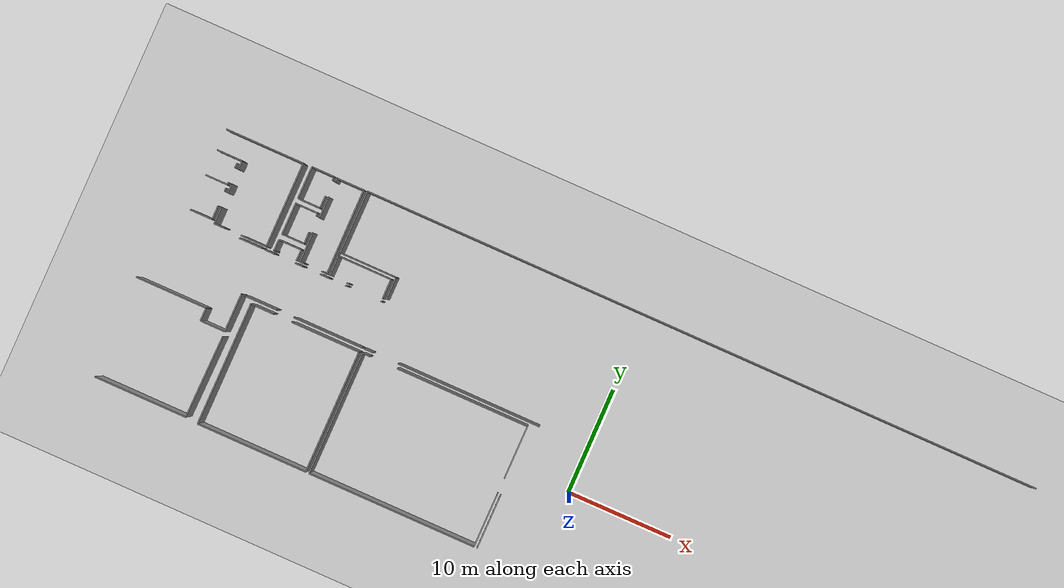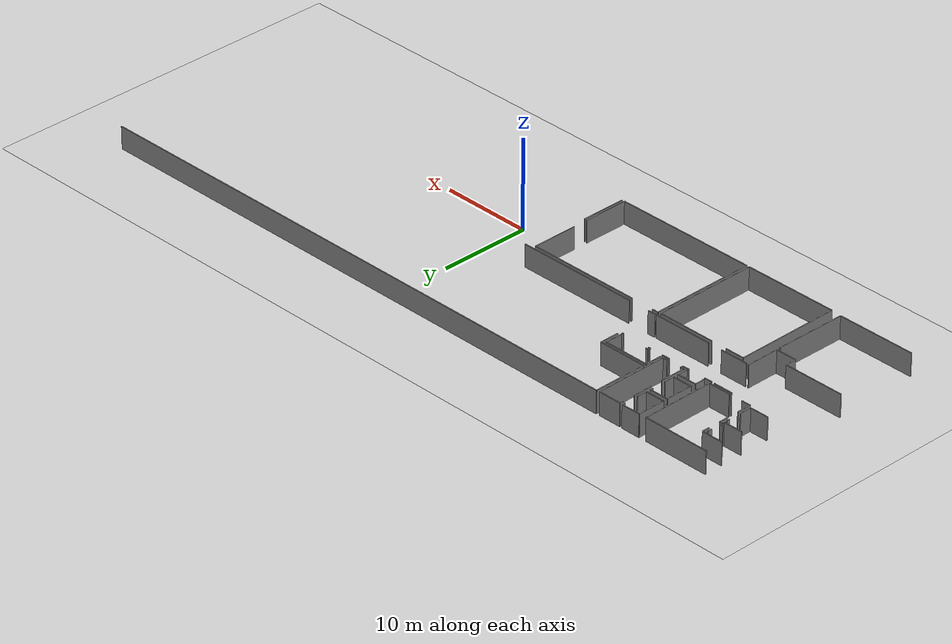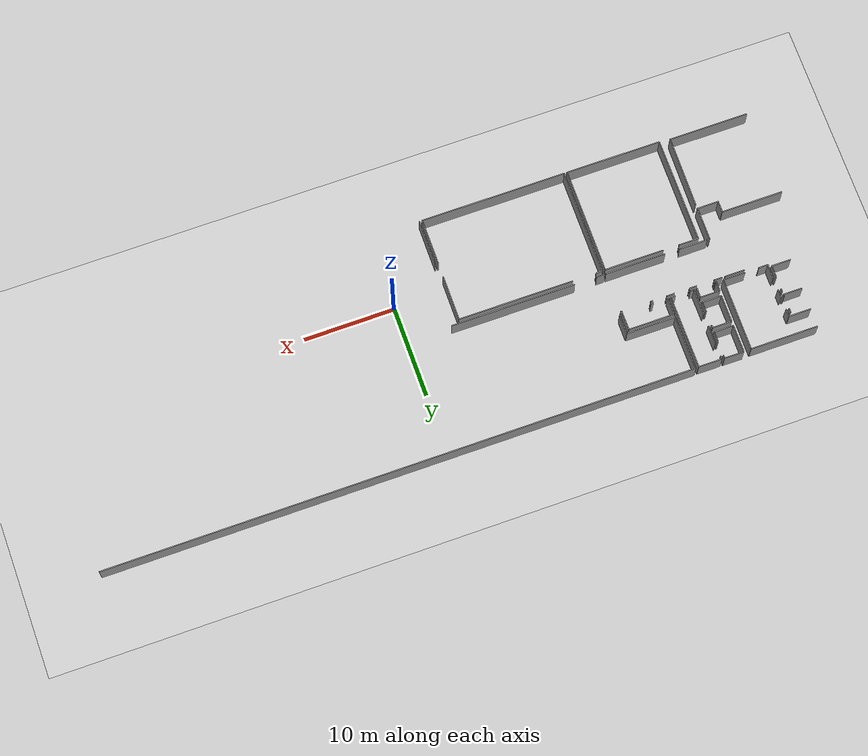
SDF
<sdf version="1.6">
 <world name="default">
  <model name="ground_plane">
   <static>1</static>
   <link name="link">
    <collision name="collision">
     <geometry><plane><normal>0 0 1</normal><size>100 100</size></plane></geometry>
     <surface><friction><ode><mu>100</mu><mu2>50</mu2></ode></friction></surface>
    </collision>
    <visual name="visual">
     <cast_shadows>0</cast_shadows>
     <geometry><plane><normal>0 0 1</normal><size>100 100</size></plane></geometry>
     <material>
      <script><uri>file://media/materials/scripts/gazebo.material</uri><name>Gazebo/Grey</name></script>
     </material>
    </visual>
   </link>
  </model>
  <model name="50037764_PLAN1">
   <static>1</static>
   <link name="Wall_164">
    <collision name="Wall_164_Collision">
     <geometry><box><size>2.33540088464 0.1 2.5</size></box></geometry>
     <pose>1.16770044232 0 1.25 0 0 0</pose>
    </collision>
    <visual name="Wall_164_Visual">
     <pose>1.16770044232 0 1.25 0 0 0</pose>
     <geometry><box><size>2.33540088464 0.1 2.5</size></box></geometry>
     <material>
      <script><uri>file://media/materials/scripts/gazebo.material</uri><name>Gazebo/Grey</name></script>
      <ambient>1 1 1 1</ambient>
     </material>
    </visual>
    <pose>101.567695358 -20.0214805023 0 0 0 3.14159265359</pose>
   </link>
   <link name="Wall_165">
    <collision name="Wall_165_Collision">
     <geometry><box><size>1.21968579999 0.1 2.5</size></box></geometry>
     <pose>0.609842899995 0 1.25 0 0 0</pose>
    </collision>
    <visual name="Wall_165_Visual">
     <pose>0.609842899995 0 1.25 0 0 0</pose>
     <geometry><box><size>1.21968579999 0.1 2.5</size></box></geometry>
     <material>
      <script><uri>file://media/materials/scripts/gazebo.material</uri><name>Gazebo/Grey</name></script>
      <ambient>1 1 1 1</ambient>
     </material>
    </visual>
    <pose>99.2322944735 -20.0214805023 0 0 0 1.57079632679</pose>
   </link>
   <link name="Wall_166">
    <collision name="Wall_166_Collision">
     <geometry><box><size>6.74716559052 0.1 2.5</size></box></geometry>
     <pose>3.37358279526 0 1.25 0 0 0</pose>
    </collision>
    <visual name="Wall_166_Visual">
     <pose>3.37358279526 0 1.25 0 0 0</pose>
     <geometry><box><size>6.74716559052 0.1 2.5</size></box></geometry>
     <material>
      <script><uri>file://media/materials/scripts/gazebo.material</uri><name>Gazebo/Grey</name></script>
      <ambient>1 1 1 1</ambient>
     </material>
    </visual>
    <pose>99.2322944735 -18.8017947023 0 0 0 3.14159265359</pose>
   </link>
   <link name="Wall_176">
    <collision name="Wall_176_Collision">
     <geometry><box><size>2.16991204433 0.1 2.5</size></box></geometry>
     <pose>1.08495602217 0 1.25 0 0 0</pose>
    </collision>
    <visual name="Wall_176_Visual">
     <pose>1.08495602217 0 1.25 0 0 0</pose>
     <geometry><box><size>2.16991204433 0.1 2.5</size></box></geometry>
     <material>
      <script><uri>file://media/materials/scripts/gazebo.material</uri><name>Gazebo/Grey</name></script>
      <ambient>1 1 1 1</ambient>
     </material>
    </visual>
    <pose>99.4064263562 -11.9763333164 0 0 0 0.0</pose>
   </link>
   <link name="Wall_177">
    <collision name="Wall_177_Collision">
     <geometry><box><size>3.63229967245 0.1 2.5</size></box></geometry>
     <pose>1.81614983623 0 1.25 0 0 0</pose>
    </collision>
    <visual name="Wall_177_Visual">
     <pose>1.81614983623 0 1.25 0 0 0</pose>
     <geometry><box><size>3.63229967245 0.1 2.5</size></box></geometry>
     <material>
      <script><uri>file://media/materials/scripts/gazebo.material</uri><name>Gazebo/Grey</name></script>
      <ambient>1 1 1 1</ambient>
     </material>
    </visual>
    <pose>101.576338401 -16.3891911129 0 0 0 -1.57317582499</pose>
   </link>
   <link name="Wall_187">
    <collision name="Wall_187_Collision">
     <geometry><box><size>2.43606690732 0.1 2.5</size></box></geometry>
     <pose>1.21803345366 0 1.25 0 0 0</pose>
    </collision>
    <visual name="Wall_187_Visual">
     <pose>1.21803345366 0 1.25 0 0 0</pose>
     <geometry><box><size>2.43606690732 0.1 2.5</size></box></geometry>
     <material>
      <script><uri>file://media/materials/scripts/gazebo.material</uri><name>Gazebo/Grey</name></script>
      <ambient>1 1 1 1</ambient>
     </material>
    </visual>
    <pose>101.869947633 -11.7022217703 0 0 0 3.14159265359</pose>
   </link>
   <link name="Wall_188">
    <collision name="Wall_188_Collision">
     <geometry><box><size>1.01098174793 0.1 2.5</size></box></geometry>
     <pose>0.505490873964 0 1.25 0 0 0</pose>
    </collision>
    <visual name="Wall_188_Visual">
     <pose>0.505490873964 0 1.25 0 0 0</pose>
     <geometry><box><size>1.01098174793 0.1 2.5</size></box></geometry>
     <material>
      <script><uri>file://media/materials/scripts/gazebo.material</uri><name>Gazebo/Grey</name></script>
      <ambient>1 1 1 1</ambient>
     </material>
    </visual>
    <pose>97.8771162743 -11.7022217703 0 0 0 3.14159265359</pose>
   </link>
   <link name="Wall_189">
    <collision name="Wall_189_Collision">
     <geometry><box><size>1.57682139407 0.1 2.5</size></box></geometry>
     <pose>0.788410697036 0 1.25 0 0 0</pose>
    </collision>
    <visual name="Wall_189_Visual">
     <pose>0.788410697036 0 1.25 0 0 0</pose>
     <geometry><box><size>1.57682139407 0.1 2.5</size></box></geometry>
     <material>
      <script><uri>file://media/materials/scripts/gazebo.material</uri><name>Gazebo/Grey</name></script>
      <ambient>1 1 1 1</ambient>
     </material>
    </visual>
    <pose>96.8661345264 -11.7022217703 0 0 0 1.57079632679</pose>
   </link>
   <link name="Wall_190">
    <collision name="Wall_190_Collision">
     <geometry><box><size>0.901189689359 0.1 2.5</size></box></geometry>
     <pose>0.450594844679 0 1.25 0 0 0</pose>
    </collision>
    <visual name="Wall_190_Visual">
     <pose>0.450594844679 0 1.25 0 0 0</pose>
     <geometry><box><size>0.901189689359 0.1 2.5</size></box></geometry>
     <material>
      <script><uri>file://media/materials/scripts/gazebo.material</uri><name>Gazebo/Grey</name></script>
      <ambient>1 1 1 1</ambient>
     </material>
    </visual>
    <pose>96.8661345264 -8.77306929686 0 0 0 1.57079632679</pose>
   </link>
   <link name="Wall_191">
    <collision name="Wall_191_Collision">
     <geometry><box><size>0.812318877421 0.1 2.5</size></box></geometry>
     <pose>0.406159438711 0 1.25 0 0 0</pose>
    </collision>
    <visual name="Wall_191_Visual">
     <pose>0.406159438711 0 1.25 0 0 0</pose>
     <geometry><box><size>0.812318877421 0.1 2.5</size></box></geometry>
     <material>
      <script><uri>file://media/materials/scripts/gazebo.material</uri><name>Gazebo/Grey</name></script>
      <ambient>1 1 1 1</ambient>
     </material>
    </visual>
    <pose>96.8661345264 -6.48332401241 0 0 0 1.57079632679</pose>
   </link>
   <link name="Wall_192">
    <collision name="Wall_192_Collision">
     <geometry><box><size>2.41217143729 0.1 2.5</size></box></geometry>
     <pose>1.20608571864 0 1.25 0 0 0</pose>
    </collision>
    <visual name="Wall_192_Visual">
     <pose>1.20608571864 0 1.25 0 0 0</pose>
     <geometry><box><size>2.41217143729 0.1 2.5</size></box></geometry>
     <material>
      <script><uri>file://media/materials/scripts/gazebo.material</uri><name>Gazebo/Grey</name></script>
      <ambient>1 1 1 1</ambient>
     </material>
    </visual>
    <pose>96.8661345264 -5.67100513498 0 0 0 3.14159265359</pose>
   </link>
   <link name="Wall_194">
    <collision name="Wall_194_Collision">
     <geometry><box><size>7.42539020794 0.1 2.5</size></box></geometry>
     <pose>3.71269510397 0 1.25 0 0 0</pose>
    </collision>
    <visual name="Wall_194_Visual">
     <pose>3.71269510397 0 1.25 0 0 0</pose>
     <geometry><box><size>7.42539020794 0.1 2.5</size></box></geometry>
     <material>
      <script><uri>file://media/materials/scripts/gazebo.material</uri><name>Gazebo/Grey</name></script>
      <ambient>1 1 1 1</ambient>
     </material>
    </visual>
    <pose>94.4539630891 -3.67367430983 0 0 0 0.0</pose>
   </link>
   <link name="Wall_195">
    <collision name="Wall_195_Collision">
     <geometry><box><size>8.02855296997 0.1 2.5</size></box></geometry>
     <pose>4.01427648498 0 1.25 0 0 0</pose>
    </collision>
    <visual name="Wall_195_Visual">
     <pose>4.01427648498 0 1.25 0 0 0</pose>
     <geometry><box><size>8.02855296997 0.1 2.5</size></box></geometry>
     <material>
      <script><uri>file://media/materials/scripts/gazebo.material</uri><name>Gazebo/Grey</name></script>
      <ambient>1 1 1 1</ambient>
     </material>
    </visual>
    <pose>101.879353297 -3.67367430983 0 0 0 -1.57196785371</pose>
   </link>
   <link name="Wall_196">
    <collision name="Wall_196_Collision">
     <geometry><box><size>2.13635670344 0.1 2.5</size></box></geometry>
     <pose>1.06817835172 0 1.25 0 0 0</pose>
    </collision>
    <visual name="Wall_196_Visual">
     <pose>1.06817835172 0 1.25 0 0 0</pose>
     <geometry><box><size>2.13635670344 0.1 2.5</size></box></geometry>
     <material>
      <script><uri>file://media/materials/scripts/gazebo.material</uri><name>Gazebo/Grey</name></script>
      <ambient>1 1 1 1</ambient>
     </material>
    </visual>
    <pose>96.565407494 -8.09682749504 0 0 0 3.14159265359</pose>
   </link>
   <link name="Wall_199">
    <collision name="Wall_199_Collision">
     <geometry><box><size>0.458970969546 0.1 2.5</size></box></geometry>
     <pose>0.229485484773 0 1.25 0 0 0</pose>
    </collision>
    <visual name="Wall_199_Visual">
     <pose>0.229485484773 0 1.25 0 0 0</pose>
     <geometry><box><size>0.458970969546 0.1 2.5</size></box></geometry>
     <material>
      <script><uri>file://media/materials/scripts/gazebo.material</uri><name>Gazebo/Grey</name></script>
      <ambient>1 1 1 1</ambient>
     </material>
    </visual>
    <pose>96.5382073313 -6.03144542173 0 0 0 -1.57079632679</pose>
   </link>
   <link name="Wall_200">
    <collision name="Wall_200_Collision">
     <geometry><box><size>0.226132152177 0.1 2.5</size></box></geometry>
     <pose>0.113066076089 0 1.25 0 0 0</pose>
    </collision>
    <visual name="Wall_200_Visual">
     <pose>0.113066076089 0 1.25 0 0 0</pose>
     <geometry><box><size>0.226132152177 0.1 2.5</size></box></geometry>
     <material>
      <script><uri>file://media/materials/scripts/gazebo.material</uri><name>Gazebo/Grey</name></script>
      <ambient>1 1 1 1</ambient>
     </material>
    </visual>
    <pose>96.5382073313 -7.87233718033 0 0 0 -1.45022000302</pose>
   </link>
   <link name="Wall_201">
    <collision name="Wall_201_Collision">
     <geometry><box><size>2.11068178352 0.1 2.5</size></box></geometry>
     <pose>1.05534089176 0 1.25 0 0 0</pose>
    </collision>
    <visual name="Wall_201_Visual">
     <pose>1.05534089176 0 1.25 0 0 0</pose>
     <geometry><box><size>2.11068178352 0.1 2.5</size></box></geometry>
     <material>
      <script><uri>file://media/materials/scripts/gazebo.material</uri><name>Gazebo/Grey</name></script>
      <ambient>1 1 1 1</ambient>
     </material>
    </visual>
    <pose>96.5437998881 -11.4373633637 0 0 0 3.14159265359</pose>
   </link>
   <link name="Wall_204">
    <collision name="Wall_204_Collision">
     <geometry><box><size>0.332401240531 0.1 2.5</size></box></geometry>
     <pose>0.166200620265 0 1.25 0 0 0</pose>
    </collision>
    <visual name="Wall_204_Visual">
     <pose>0.166200620265 0 1.25 0 0 0</pose>
     <geometry><box><size>0.332401240531 0.1 2.5</size></box></geometry>
     <material>
      <script><uri>file://media/materials/scripts/gazebo.material</uri><name>Gazebo/Grey</name></script>
      <ambient>1 1 1 1</ambient>
     </material>
    </visual>
    <pose>96.5437998881 -8.42081447964 0 0 0 -1.57079632679</pose>
   </link>
   <link name="Wall_205">
    <collision name="Wall_205_Collision">
     <geometry><box><size>1.31297981595 0.1 2.5</size></box></geometry>
     <pose>0.656489907977 0 1.25 0 0 0</pose>
    </collision>
    <visual name="Wall_205_Visual">
     <pose>0.656489907977 0 1.25 0 0 0</pose>
     <geometry><box><size>1.31297981595 0.1 2.5</size></box></geometry>
     <material>
      <script><uri>file://media/materials/scripts/gazebo.material</uri><name>Gazebo/Grey</name></script>
      <ambient>1 1 1 1</ambient>
     </material>
    </visual>
    <pose>96.5437998881 -10.1243835477 0 0 0 -1.57079632679</pose>
   </link>
   <link name="Wall_216">
    <collision name="Wall_216_Collision">
     <geometry><box><size>8.74853830901 0.1 2.5</size></box></geometry>
     <pose>4.37426915451 0 1.25 0 0 0</pose>
    </collision>
    <visual name="Wall_216_Visual">
     <pose>4.37426915451 0 1.25 0 0 0</pose>
     <geometry><box><size>8.74853830901 0.1 2.5</size></box></geometry>
     <material>
      <script><uri>file://media/materials/scripts/gazebo.material</uri><name>Gazebo/Grey</name></script>
      <ambient>1 1 1 1</ambient>
     </material>
    </visual>
    <pose>101.491687427 -28.312445981 0 0 0 3.14159265359</pose>
   </link>
   <link name="Wall_224">
    <collision name="Wall_224_Collision">
     <geometry><box><size>7.83434694967 0.1 2.5</size></box></geometry>
     <pose>3.91717347484 0 1.25 0 0 0</pose>
    </collision>
    <visual name="Wall_224_Visual">
     <pose>3.91717347484 0 1.25 0 0 0</pose>
     <geometry><box><size>7.83434694967 0.1 2.5</size></box></geometry>
     <material>
      <script><uri>file://media/materials/scripts/gazebo.material</uri><name>Gazebo/Grey</name></script>
      <ambient>1 1 1 1</ambient>
     </material>
    </visual>
    <pose>101.596420764 -20.4787991255 0 0 0 -1.58416520837</pose>
   </link>
   <link name="Wall_234">
    <collision name="Wall_234_Collision">
     <geometry><box><size>6.60989374142 0.1 2.5</size></box></geometry>
     <pose>3.30494687071 0 1.25 0 0 0</pose>
    </collision>
    <visual name="Wall_234_Visual">
     <pose>3.30494687071 0 1.25 0 0 0</pose>
     <geometry><box><size>6.60989374142 0.1 2.5</size></box></geometry>
     <material>
      <script><uri>file://media/materials/scripts/gazebo.material</uri><name>Gazebo/Grey</name></script>
      <ambient>1 1 1 1</ambient>
     </material>
    </visual>
    <pose>113.207585541 -16.4190604505 0 0 0 3.14159265359</pose>
   </link>
   <link name="Wall_235">
    <collision name="Wall_235_Collision">
     <geometry><box><size>3.09573440439 0.1 2.5</size></box></geometry>
     <pose>1.5478672022 0 1.25 0 0 0</pose>
    </collision>
    <visual name="Wall_235_Visual">
     <pose>1.5478672022 0 1.25 0 0 0</pose>
     <geometry><box><size>3.09573440439 0.1 2.5</size></box></geometry>
     <material>
      <script><uri>file://media/materials/scripts/gazebo.material</uri><name>Gazebo/Grey</name></script>
      <ambient>1 1 1 1</ambient>
     </material>
    </visual>
    <pose>104.973054044 -16.4190604505 0 0 0 3.14159265359</pose>
   </link>
   <link name="Wall_236">
    <collision name="Wall_236_Collision">
     <geometry><box><size>0.897096954599 0.1 2.5</size></box></geometry>
     <pose>0.448548477299 0 1.25 0 0 0</pose>
    </collision>
    <visual name="Wall_236_Visual">
     <pose>0.448548477299 0 1.25 0 0 0</pose>
     <geometry><box><size>0.897096954599 0.1 2.5</size></box></geometry>
     <material>
      <script><uri>file://media/materials/scripts/gazebo.material</uri><name>Gazebo/Grey</name></script>
      <ambient>1 1 1 1</ambient>
     </material>
    </visual>
    <pose>101.87731964 -11.9930347247 0 0 0 0.0</pose>
   </link>
   <link name="Wall_237">
    <collision name="Wall_237_Collision">
     <geometry><box><size>0.794905689156 0.1 2.5</size></box></geometry>
     <pose>0.397452844578 0 1.25 0 0 0</pose>
    </collision>
    <visual name="Wall_237_Visual">
     <pose>0.397452844578 0 1.25 0 0 0</pose>
     <geometry><box><size>0.794905689156 0.1 2.5</size></box></geometry>
     <material>
      <script><uri>file://media/materials/scripts/gazebo.material</uri><name>Gazebo/Grey</name></script>
      <ambient>1 1 1 1</ambient>
     </material>
    </visual>
    <pose>104.753164879 -11.9930347247 0 0 0 0.0</pose>
   </link>
   <link name="Wall_238">
    <collision name="Wall_238_Collision">
     <geometry><box><size>0.884640805328 0.1 2.5</size></box></geometry>
     <pose>0.442320402664 0 1.25 0 0 0</pose>
    </collision>
    <visual name="Wall_238_Visual">
     <pose>0.442320402664 0 1.25 0 0 0</pose>
     <geometry><box><size>0.884640805328 0.1 2.5</size></box></geometry>
     <material>
      <script><uri>file://media/materials/scripts/gazebo.material</uri><name>Gazebo/Grey</name></script>
      <ambient>1 1 1 1</ambient>
     </material>
    </visual>
    <pose>107.204484214 -11.9930347247 0 0 0 0.0</pose>
   </link>
   <link name="Wall_239">
    <collision name="Wall_239_Collision">
     <geometry><box><size>0.224464893996 0.1 2.5</size></box></geometry>
     <pose>0.112232446998 0 1.25 0 0 0</pose>
    </collision>
    <visual name="Wall_239_Visual">
     <pose>0.112232446998 0 1.25 0 0 0</pose>
     <geometry><box><size>0.224464893996 0.1 2.5</size></box></geometry>
     <material>
      <script><uri>file://media/materials/scripts/gazebo.material</uri><name>Gazebo/Grey</name></script>
      <ambient>1 1 1 1</ambient>
     </material>
    </visual>
    <pose>109.640551121 -11.9930347247 0 0 0 0.0</pose>
   </link>
   <link name="Wall_240">
    <collision name="Wall_240_Collision">
     <geometry><box><size>0.194976867151 0.1 2.5</size></box></geometry>
     <pose>0.0974884335757 0 1.25 0 0 0</pose>
    </collision>
    <visual name="Wall_240_Visual">
     <pose>0.0974884335757 0 1.25 0 0 0</pose>
     <geometry><box><size>0.194976867151 0.1 2.5</size></box></geometry>
     <material>
      <script><uri>file://media/materials/scripts/gazebo.material</uri><name>Gazebo/Grey</name></script>
      <ambient>1 1 1 1</ambient>
     </material>
    </visual>
    <pose>113.012608674 -11.9930347247 0 0 0 0.0</pose>
   </link>
   <link name="Wall_241">
    <collision name="Wall_241_Collision">
     <geometry><box><size>0.121765214297 0.1 2.5</size></box></geometry>
     <pose>0.0608826071483 0 1.25 0 0 0</pose>
    </collision>
    <visual name="Wall_241_Visual">
     <pose>0.0608826071483 0 1.25 0 0 0</pose>
     <geometry><box><size>0.121765214297 0.1 2.5</size></box></geometry>
     <material>
      <script><uri>file://media/materials/scripts/gazebo.material</uri><name>Gazebo/Grey</name></script>
      <ambient>1 1 1 1</ambient>
     </material>
    </visual>
    <pose>102.763739895 -11.7585540699 0 0 0 3.14159265359</pose>
   </link>
   <link name="Wall_242">
    <collision name="Wall_242_Collision">
     <geometry><box><size>1.06441608623 0.1 2.5</size></box></geometry>
     <pose>0.532208043114 0 1.25 0 0 0</pose>
    </collision>
    <visual name="Wall_242_Visual">
     <pose>0.532208043114 0 1.25 0 0 0</pose>
     <geometry><box><size>1.06441608623 0.1 2.5</size></box></geometry>
     <material>
      <script><uri>file://media/materials/scripts/gazebo.material</uri><name>Gazebo/Grey</name></script>
      <ambient>1 1 1 1</ambient>
     </material>
    </visual>
    <pose>102.641974681 -11.7585540699 0 0 0 1.57079632679</pose>
   </link>
   <link name="Wall_243">
    <collision name="Wall_243_Collision">
     <geometry><box><size>2.18084295084 0.1 2.5</size></box></geometry>
     <pose>1.09042147542 0 1.25 0 0 0</pose>
    </collision>
    <visual name="Wall_243_Visual">
     <pose>1.09042147542 0 1.25 0 0 0</pose>
     <geometry><box><size>2.18084295084 0.1 2.5</size></box></geometry>
     <material>
      <script><uri>file://media/materials/scripts/gazebo.material</uri><name>Gazebo/Grey</name></script>
      <ambient>1 1 1 1</ambient>
     </material>
    </visual>
    <pose>102.641974681 -10.6941379836 0 0 0 0.0</pose>
   </link>
   <link name="Wall_244">
    <collision name="Wall_244_Collision">
     <geometry><box><size>1.06480362205 0.1 2.5</size></box></geometry>
     <pose>0.532401811027 0 1.25 0 0 0</pose>
    </collision>
    <visual name="Wall_244_Visual">
     <pose>0.532401811027 0 1.25 0 0 0</pose>
     <geometry><box><size>1.06480362205 0.1 2.5</size></box></geometry>
     <material>
      <script><uri>file://media/materials/scripts/gazebo.material</uri><name>Gazebo/Grey</name></script>
      <ambient>1 1 1 1</ambient>
     </material>
    </visual>
    <pose>104.822817632 -10.6941379836 0 0 0 -1.59777678615</pose>
   </link>
   <link name="Wall_245">
    <collision name="Wall_245_Collision">
     <geometry><box><size>0.517057298287 0.1 2.5</size></box></geometry>
     <pose>0.258528649143 0 1.25 0 0 0</pose>
    </collision>
    <visual name="Wall_245_Visual">
     <pose>0.258528649143 0 1.25 0 0 0</pose>
     <geometry><box><size>0.517057298287 0.1 2.5</size></box></geometry>
     <material>
      <script><uri>file://media/materials/scripts/gazebo.material</uri><name>Gazebo/Grey</name></script>
      <ambient>1 1 1 1</ambient>
     </material>
    </visual>
    <pose>107.730947176 -11.7184147643 0 0 0 3.14159265359</pose>
   </link>
   <link name="Wall_246">
    <collision name="Wall_246_Collision">
     <geometry><box><size>0.421475418171 0.1 2.5</size></box></geometry>
     <pose>0.210737709085 0 1.25 0 0 0</pose>
    </collision>
    <visual name="Wall_246_Visual">
     <pose>0.210737709085 0 1.25 0 0 0</pose>
     <geometry><box><size>0.421475418171 0.1 2.5</size></box></geometry>
     <material>
      <script><uri>file://media/materials/scripts/gazebo.material</uri><name>Gazebo/Grey</name></script>
      <ambient>1 1 1 1</ambient>
     </material>
    </visual>
    <pose>105.554425746 -11.7184147643 0 0 0 3.14159265359</pose>
   </link>
   <link name="Wall_247">
    <collision name="Wall_247_Collision">
     <geometry><box><size>2.80883623977 0.1 2.5</size></box></geometry>
     <pose>1.40441811988 0 1.25 0 0 0</pose>
    </collision>
    <visual name="Wall_247_Visual">
     <pose>1.40441811988 0 1.25 0 0 0</pose>
     <geometry><box><size>2.80883623977 0.1 2.5</size></box></geometry>
     <material>
      <script><uri>file://media/materials/scripts/gazebo.material</uri><name>Gazebo/Grey</name></script>
      <ambient>1 1 1 1</ambient>
     </material>
    </visual>
    <pose>105.132950328 -11.7184147643 0 0 0 1.57079632679</pose>
   </link>
   <link name="Wall_248">
    <collision name="Wall_248_Collision">
     <geometry><box><size>2.05251919264 0.1 2.5</size></box></geometry>
     <pose>1.02625959632 0 1.25 0 0 0</pose>
    </collision>
    <visual name="Wall_248_Visual">
     <pose>1.02625959632 0 1.25 0 0 0</pose>
     <geometry><box><size>2.05251919264 0.1 2.5</size></box></geometry>
     <material>
      <script><uri>file://media/materials/scripts/gazebo.material</uri><name>Gazebo/Grey</name></script>
      <ambient>1 1 1 1</ambient>
     </material>
    </visual>
    <pose>105.132950328 -7.51428644059 0 0 0 1.57079632679</pose>
   </link>
   <link name="Wall_249">
    <collision name="Wall_249_Collision">
     <geometry><box><size>0.353881742844 0.1 2.5</size></box></geometry>
     <pose>0.176940871422 0 1.25 0 0 0</pose>
    </collision>
    <visual name="Wall_249_Visual">
     <pose>0.176940871422 0 1.25 0 0 0</pose>
     <geometry><box><size>0.353881742844 0.1 2.5</size></box></geometry>
     <material>
      <script><uri>file://media/materials/scripts/gazebo.material</uri><name>Gazebo/Grey</name></script>
      <ambient>1 1 1 1</ambient>
     </material>
    </visual>
    <pose>105.132950328 -4.02097208806 0 0 0 1.57079632679</pose>
   </link>
   <link name="Wall_250">
    <collision name="Wall_250_Collision">
     <geometry><box><size>2.56444150694 0.1 2.5</size></box></geometry>
     <pose>1.28222075347 0 1.25 0 0 0</pose>
    </collision>
    <visual name="Wall_250_Visual">
     <pose>1.28222075347 0 1.25 0 0 0</pose>
     <geometry><box><size>2.56444150694 0.1 2.5</size></box></geometry>
     <material>
      <script><uri>file://media/materials/scripts/gazebo.material</uri><name>Gazebo/Grey</name></script>
      <ambient>1 1 1 1</ambient>
     </material>
    </visual>
    <pose>105.132950328 -3.66709034521 0 0 0 0.0</pose>
   </link>
   <link name="Wall_251">
    <collision name="Wall_251_Collision">
     <geometry><box><size>8.05139434279 0.1 2.5</size></box></geometry>
     <pose>4.02569717139 0 1.25 0 0 0</pose>
    </collision>
    <visual name="Wall_251_Visual">
     <pose>4.02569717139 0 1.25 0 0 0</pose>
     <geometry><box><size>8.05139434279 0.1 2.5</size></box></geometry>
     <material>
      <script><uri>file://media/materials/scripts/gazebo.material</uri><name>Gazebo/Grey</name></script>
      <ambient>1 1 1 1</ambient>
     </material>
    </visual>
    <pose>107.697391835 -3.66709034521 0 0 0 -1.56662867128</pose>
   </link>
   <link name="Wall_252">
    <collision name="Wall_252_Collision">
     <geometry><box><size>2.12161269002 0.1 2.5</size></box></geometry>
     <pose>1.06080634501 0 1.25 0 0 0</pose>
    </collision>
    <visual name="Wall_252_Visual">
     <pose>1.06080634501 0 1.25 0 0 0</pose>
     <geometry><box><size>2.12161269002 0.1 2.5</size></box></geometry>
     <material>
      <script><uri>file://media/materials/scripts/gazebo.material</uri><name>Gazebo/Grey</name></script>
      <ambient>1 1 1 1</ambient>
     </material>
    </visual>
    <pose>104.822817632 -6.66490416391 0 0 0 3.14159265359</pose>
   </link>
   <link name="Wall_253">
    <collision name="Wall_253_Collision">
     <geometry><box><size>3.01987899741 0.1 2.5</size></box></geometry>
     <pose>1.5099394987 0 1.25 0 0 0</pose>
    </collision>
    <visual name="Wall_253_Visual">
     <pose>1.5099394987 0 1.25 0 0 0</pose>
     <geometry><box><size>3.01987899741 0.1 2.5</size></box></geometry>
     <material>
      <script><uri>file://media/materials/scripts/gazebo.material</uri><name>Gazebo/Grey</name></script>
      <ambient>1 1 1 1</ambient>
     </material>
    </visual>
    <pose>102.701204942 -6.66490416391 0 0 0 1.57079632679</pose>
   </link>
   <link name="Wall_254">
    <collision name="Wall_254_Collision">
     <geometry><box><size>2.13101835375 0.1 2.5</size></box></geometry>
     <pose>1.06550917688 0 1.25 0 0 0</pose>
    </collision>
    <visual name="Wall_254_Visual">
     <pose>1.06550917688 0 1.25 0 0 0</pose>
     <geometry><box><size>2.13101835375 0.1 2.5</size></box></geometry>
     <material>
      <script><uri>file://media/materials/scripts/gazebo.material</uri><name>Gazebo/Grey</name></script>
      <ambient>1 1 1 1</ambient>
     </material>
    </visual>
    <pose>102.701204942 -3.64502516651 0 0 0 0.0</pose>
   </link>
   <link name="Wall_255">
    <collision name="Wall_255_Collision">
     <geometry><box><size>0.353576694291 0.1 2.5</size></box></geometry>
     <pose>0.176788347145 0 1.25 0 0 0</pose>
    </collision>
    <visual name="Wall_255_Visual">
     <pose>0.176788347145 0 1.25 0 0 0</pose>
     <geometry><box><size>0.353576694291 0.1 2.5</size></box></geometry>
     <material>
      <script><uri>file://media/materials/scripts/gazebo.material</uri><name>Gazebo/Grey</name></script>
      <ambient>1 1 1 1</ambient>
     </material>
    </visual>
    <pose>104.832223296 -3.64502516651 0 0 0 -1.57079632679</pose>
   </link>
   <link name="Wall_256">
    <collision name="Wall_256_Collision">
     <geometry><box><size>1.13997982639 0.1 2.5</size></box></geometry>
     <pose>0.569989913197 0 1.25 0 0 0</pose>
    </collision>
    <visual name="Wall_256_Visual">
     <pose>0.569989913197 0 1.25 0 0 0</pose>
     <geometry><box><size>1.13997982639 0.1 2.5</size></box></geometry>
     <material>
      <script><uri>file://media/materials/scripts/gazebo.material</uri><name>Gazebo/Grey</name></script>
      <ambient>1 1 1 1</ambient>
     </material>
    </visual>
    <pose>104.832223296 -5.52496313997 0 0 0 -1.57904714864</pose>
   </link>
   <link name="Wall_257">
    <collision name="Wall_257_Collision">
     <geometry><box><size>2.12720524684 0.1 2.5</size></box></geometry>
     <pose>1.06360262342 0 1.25 0 0 0</pose>
    </collision>
    <visual name="Wall_257_Visual">
     <pose>1.06360262342 0 1.25 0 0 0</pose>
     <geometry><box><size>2.12720524684 0.1 2.5</size></box></geometry>
     <material>
      <script><uri>file://media/materials/scripts/gazebo.material</uri><name>Gazebo/Grey</name></script>
      <ambient>1 1 1 1</ambient>
     </material>
    </visual>
    <pose>104.828410189 -10.1254003762 0 0 0 3.14159265359</pose>
   </link>
   <link name="Wall_258">
    <collision name="Wall_258_Collision">
     <geometry><box><size>2.96357211856 0.1 2.5</size></box></geometry>
     <pose>1.48178605928 0 1.25 0 0 0</pose>
    </collision>
    <visual name="Wall_258_Visual">
     <pose>1.48178605928 0 1.25 0 0 0</pose>
     <geometry><box><size>2.96357211856 0.1 2.5</size></box></geometry>
     <material>
      <script><uri>file://media/materials/scripts/gazebo.material</uri><name>Gazebo/Grey</name></script>
      <ambient>1 1 1 1</ambient>
     </material>
    </visual>
    <pose>102.701204942 -10.1254003762 0 0 0 1.57079632679</pose>
   </link>
   <link name="Wall_259">
    <collision name="Wall_259_Collision">
     <geometry><box><size>2.10254715542 0.1 2.5</size></box></geometry>
     <pose>1.05127357771 0 1.25 0 0 0</pose>
    </collision>
    <visual name="Wall_259_Visual">
     <pose>1.05127357771 0 1.25 0 0 0</pose>
     <geometry><box><size>2.10254715542 0.1 2.5</size></box></geometry>
     <material>
      <script><uri>file://media/materials/scripts/gazebo.material</uri><name>Gazebo/Grey</name></script>
      <ambient>1 1 1 1</ambient>
     </material>
    </visual>
    <pose>102.701204942 -7.16182825766 0 0 0 0.0</pose>
   </link>
   <link name="Wall_260">
    <collision name="Wall_260_Collision">
     <geometry><box><size>0.305811174945 0.1 2.5</size></box></geometry>
     <pose>0.152905587473 0 1.25 0 0 0</pose>
    </collision>
    <visual name="Wall_260_Visual">
     <pose>0.152905587473 0 1.25 0 0 0</pose>
     <geometry><box><size>0.305811174945 0.1 2.5</size></box></geometry>
     <material>
      <script><uri>file://media/materials/scripts/gazebo.material</uri><name>Gazebo/Grey</name></script>
      <ambient>1 1 1 1</ambient>
     </material>
    </visual>
    <pose>104.803752097 -7.16182825766 0 0 0 -1.57079632679</pose>
   </link>
   <link name="Wall_261">
    <collision name="Wall_261_Collision">
     <geometry><box><size>1.11484387948 0.1 2.5</size></box></geometry>
     <pose>0.557421939742 0 1.25 0 0 0</pose>
    </collision>
    <visual name="Wall_261_Visual">
     <pose>0.557421939742 0 1.25 0 0 0</pose>
     <geometry><box><size>1.11484387948 0.1 2.5</size></box></geometry>
     <material>
      <script><uri>file://media/materials/scripts/gazebo.material</uri><name>Gazebo/Grey</name></script>
      <ambient>1 1 1 1</ambient>
     </material>
    </visual>
    <pose>104.803752097 -9.01082922365 0 0 0 -1.54867654591</pose>
   </link>
   <link name="Wall_262">
    <collision name="Wall_262_Collision">
     <geometry><box><size>0.259545477655 0.1 2.5</size></box></geometry>
     <pose>0.129772738828 0 1.25 0 0 0</pose>
    </collision>
    <visual name="Wall_262_Visual">
     <pose>0.129772738828 0 1.25 0 0 0</pose>
     <geometry><box><size>0.259545477655 0.1 2.5</size></box></geometry>
     <material>
      <script><uri>file://media/materials/scripts/gazebo.material</uri><name>Gazebo/Grey</name></script>
      <ambient>1 1 1 1</ambient>
     </material>
    </visual>
    <pose>109.917891098 -11.7513854288 0 0 0 3.14159265359</pose>
   </link>
   <link name="Wall_263">
    <collision name="Wall_263_Collision">
     <geometry><box><size>1.87548934872 0.1 2.5</size></box></geometry>
     <pose>0.937744674361 0 1.25 0 0 0</pose>
    </collision>
    <visual name="Wall_263_Visual">
     <pose>0.937744674361 0 1.25 0 0 0</pose>
     <geometry><box><size>1.87548934872 0.1 2.5</size></box></geometry>
     <material>
      <script><uri>file://media/materials/scripts/gazebo.material</uri><name>Gazebo/Grey</name></script>
      <ambient>1 1 1 1</ambient>
     </material>
    </visual>
    <pose>108.024302201 -11.7513854288 0 0 0 1.57079632679</pose>
   </link>
   <link name="Wall_264">
    <collision name="Wall_264_Collision">
     <geometry><box><size>5.06482281763 0.1 2.5</size></box></geometry>
     <pose>2.53241140882 0 1.25 0 0 0</pose>
    </collision>
    <visual name="Wall_264_Visual">
     <pose>2.53241140882 0 1.25 0 0 0</pose>
     <geometry><box><size>5.06482281763 0.1 2.5</size></box></geometry>
     <material>
      <script><uri>file://media/materials/scripts/gazebo.material</uri><name>Gazebo/Grey</name></script>
      <ambient>1 1 1 1</ambient>
     </material>
    </visual>
    <pose>108.024302201 -9.87589608013 0 0 0 0.0</pose>
   </link>
   <link name="Wall_265">
    <collision name="Wall_265_Collision">
     <geometry><box><size>1.87555557137 0.1 2.5</size></box></geometry>
     <pose>0.937777785686 0 1.25 0 0 0</pose>
    </collision>
    <visual name="Wall_265_Visual">
     <pose>0.937777785686 0 1.25 0 0 0</pose>
     <geometry><box><size>1.87555557137 0.1 2.5</size></box></geometry>
     <material>
      <script><uri>file://media/materials/scripts/gazebo.material</uri><name>Gazebo/Grey</name></script>
      <ambient>1 1 1 1</ambient>
     </material>
    </visual>
    <pose>113.089125019 -9.87589608013 0 0 0 -1.56239293546</pose>
   </link>
   <link name="Wall_266">
    <collision name="Wall_266_Collision">
     <geometry><box><size>10.4209670039 0.1 2.5</size></box></geometry>
     <pose>5.21048350196 0 1.25 0 0 0</pose>
    </collision>
    <visual name="Wall_266_Visual">
     <pose>5.21048350196 0 1.25 0 0 0</pose>
     <geometry><box><size>10.4209670039 0.1 2.5</size></box></geometry>
     <material>
      <script><uri>file://media/materials/scripts/gazebo.material</uri><name>Gazebo/Grey</name></script>
      <ambient>1 1 1 1</ambient>
     </material>
    </visual>
    <pose>113.112257868 -28.4291270527 0 0 0 3.14159265359</pose>
   </link>
   <link name="Wall_267">
    <collision name="Wall_267_Collision">
     <geometry><box><size>11.5673648889 0.1 2.5</size></box></geometry>
     <pose>5.78368244446 0 1.25 0 0 0</pose>
    </collision>
    <visual name="Wall_267_Visual">
     <pose>5.78368244446 0 1.25 0 0 0</pose>
     <geometry><box><size>11.5673648889 0.1 2.5</size></box></geometry>
     <material>
      <script><uri>file://media/materials/scripts/gazebo.material</uri><name>Gazebo/Grey</name></script>
      <ambient>1 1 1 1</ambient>
     </material>
    </visual>
    <pose>102.691290864 -28.4291270527 0 0 0 1.57079632679</pose>
   </link>
   <link name="Wall_268">
    <collision name="Wall_268_Collision">
     <geometry><box><size>2.14906705984 0.1 2.5</size></box></geometry>
     <pose>1.07453352992 0 1.25 0 0 0</pose>
    </collision>
    <visual name="Wall_268_Visual">
     <pose>1.07453352992 0 1.25 0 0 0</pose>
     <geometry><box><size>2.14906705984 0.1 2.5</size></box></geometry>
     <material>
      <script><uri>file://media/materials/scripts/gazebo.material</uri><name>Gazebo/Grey</name></script>
      <ambient>1 1 1 1</ambient>
     </material>
    </visual>
    <pose>102.691290864 -16.8617621638 0 0 0 0.0</pose>
   </link>
   <link name="Wall_269">
    <collision name="Wall_269_Collision">
     <geometry><box><size>6.50617723321 0.1 2.5</size></box></geometry>
     <pose>3.2530886166 0 1.25 0 0 0</pose>
    </collision>
    <visual name="Wall_269_Visual">
     <pose>3.2530886166 0 1.25 0 0 0</pose>
     <geometry><box><size>6.50617723321 0.1 2.5</size></box></geometry>
     <material>
      <script><uri>file://media/materials/scripts/gazebo.material</uri><name>Gazebo/Grey</name></script>
      <ambient>1 1 1 1</ambient>
     </material>
    </visual>
    <pose>106.609893741 -16.8617621638 0 0 0 0.0</pose>
   </link>
   <link name="Wall_270">
    <collision name="Wall_270_Collision">
     <geometry><box><size>11.5673655174 0.1 2.5</size></box></geometry>
     <pose>5.7836827587 0 1.25 0 0 0</pose>
    </collision>
    <visual name="Wall_270_Visual">
     <pose>5.7836827587 0 1.25 0 0 0</pose>
     <geometry><box><size>11.5673655174 0.1 2.5</size></box></geometry>
     <material>
      <script><uri>file://media/materials/scripts/gazebo.material</uri><name>Gazebo/Grey</name></script>
      <ambient>1 1 1 1</ambient>
     </material>
    </visual>
    <pose>113.116070975 -16.8617621638 0 0 0 -1.57112597031</pose>
   </link>
   <link name="Wall_273">
    <collision name="Wall_273_Collision">
     <geometry><box><size>0.908282068229 0.1 2.5</size></box></geometry>
     <pose>0.454141034115 0 1.25 0 0 0</pose>
    </collision>
    <visual name="Wall_273_Visual">
     <pose>0.454141034115 0 1.25 0 0 0</pose>
     <geometry><box><size>0.908282068229 0.1 2.5</size></box></geometry>
     <material>
      <script><uri>file://media/materials/scripts/gazebo.material</uri><name>Gazebo/Grey</name></script>
      <ambient>1 1 1 1</ambient>
     </material>
    </visual>
    <pose>113.346891047 -16.4093243175 0 0 0 0.0</pose>
   </link>
   <link name="Wall_274">
    <collision name="Wall_274_Collision">
     <geometry><box><size>13.6478722863 0.1 2.5</size></box></geometry>
     <pose>6.82393614317 0 1.25 0 0 0</pose>
    </collision>
    <visual name="Wall_274_Visual">
     <pose>6.82393614317 0 1.25 0 0 0</pose>
     <geometry><box><size>13.6478722863 0.1 2.5</size></box></geometry>
     <material>
      <script><uri>file://media/materials/scripts/gazebo.material</uri><name>Gazebo/Grey</name></script>
      <ambient>1 1 1 1</ambient>
     </material>
    </visual>
    <pose>116.673191316 -16.4093243175 0 0 0 0.0</pose>
   </link>
   <link name="Wall_284">
    <collision name="Wall_284_Collision">
     <geometry><box><size>2.09293812599 0.1 2.5</size></box></geometry>
     <pose>1.04646906299 0 1.25 0 0 0</pose>
    </collision>
    <visual name="Wall_284_Visual">
     <pose>1.04646906299 0 1.25 0 0 0</pose>
     <geometry><box><size>2.09293812599 0.1 2.5</size></box></geometry>
     <material>
      <script><uri>file://media/materials/scripts/gazebo.material</uri><name>Gazebo/Grey</name></script>
      <ambient>1 1 1 1</ambient>
     </material>
    </visual>
    <pose>113.432050435 -11.6420255224 0 0 0 1.57079632679</pose>
   </link>
   <link name="Wall_285">
    <collision name="Wall_285_Collision">
     <geometry><box><size>5.38690324877 0.1 2.5</size></box></geometry>
     <pose>2.69345162438 0 1.25 0 0 0</pose>
    </collision>
    <visual name="Wall_285_Visual">
     <pose>2.69345162438 0 1.25 0 0 0</pose>
     <geometry><box><size>5.38690324877 0.1 2.5</size></box></geometry>
     <material>
      <script><uri>file://media/materials/scripts/gazebo.material</uri><name>Gazebo/Grey</name></script>
      <ambient>1 1 1 1</ambient>
     </material>
    </visual>
    <pose>113.432050435 -9.54908739641 0 0 0 3.14159265359</pose>
   </link>
   <link name="Wall_286">
    <collision name="Wall_286_Collision">
     <geometry><box><size>5.91992475469 0.1 2.5</size></box></geometry>
     <pose>2.95996237735 0 1.25 0 0 0</pose>
    </collision>
    <visual name="Wall_286_Visual">
     <pose>2.95996237735 0 1.25 0 0 0</pose>
     <geometry><box><size>5.91992475469 0.1 2.5</size></box></geometry>
     <material>
      <script><uri>file://media/materials/scripts/gazebo.material</uri><name>Gazebo/Grey</name></script>
      <ambient>1 1 1 1</ambient>
     </material>
    </visual>
    <pose>108.045147186 -9.54908739641 0 0 0 1.57079632679</pose>
   </link>
   <link name="Wall_287">
    <collision name="Wall_287_Collision">
     <geometry><box><size>64.5274289491 0.1 2.5</size></box></geometry>
     <pose>32.2637144746 0 1.25 0 0 0</pose>
    </collision>
    <visual name="Wall_287_Visual">
     <pose>32.2637144746 0 1.25 0 0 0</pose>
     <geometry><box><size>64.5274289491 0.1 2.5</size></box></geometry>
     <material>
      <script><uri>file://media/materials/scripts/gazebo.material</uri><name>Gazebo/Grey</name></script>
      <ambient>1 1 1 1</ambient>
     </material>
    </visual>
    <pose>108.045147186 -3.62916264172 0 0 0 0.0</pose>
   </link>
   <link name="Wall_289">
    <collision name="Wall_289_Collision">
     <geometry><box><size>15.9151456607 0.1 2.5</size></box></geometry>
     <pose>7.95757283034 0 1.25 0 0 0</pose>
    </collision>
    <visual name="Wall_289_Visual">
     <pose>7.95757283034 0 1.25 0 0 0</pose>
     <geometry><box><size>15.9151456607 0.1 2.5</size></box></geometry>
     <material>
      <script><uri>file://media/materials/scripts/gazebo.material</uri><name>Gazebo/Grey</name></script>
      <ambient>1 1 1 1</ambient>
     </material>
    </visual>
    <pose>129.347196095 -28.4291270527 0 0 0 3.14159265359</pose>
   </link>
   <link name="Wall_290">
    <collision name="Wall_290_Collision">
     <geometry><box><size>11.6052671717 0.1 2.5</size></box></geometry>
     <pose>5.80263358585 0 1.25 0 0 0</pose>
    </collision>
    <visual name="Wall_290_Visual">
     <pose>5.80263358585 0 1.25 0 0 0</pose>
     <geometry><box><size>11.6052671717 0.1 2.5</size></box></geometry>
     <material>
      <script><uri>file://media/materials/scripts/gazebo.material</uri><name>Gazebo/Grey</name></script>
      <ambient>1 1 1 1</ambient>
     </material>
    </visual>
    <pose>113.432050435 -28.4291270527 0 0 0 1.57079632679</pose>
   </link>
   <link name="Wall_291">
    <collision name="Wall_291_Collision">
     <geometry><box><size>0.711017336926 0.1 2.5</size></box></geometry>
     <pose>0.355508668463 0 1.25 0 0 0</pose>
    </collision>
    <visual name="Wall_291_Visual">
     <pose>0.355508668463 0 1.25 0 0 0</pose>
     <geometry><box><size>0.711017336926 0.1 2.5</size></box></geometry>
     <material>
      <script><uri>file://media/materials/scripts/gazebo.material</uri><name>Gazebo/Grey</name></script>
      <ambient>1 1 1 1</ambient>
     </material>
    </visual>
    <pose>113.432050435 -16.823859881 0 0 0 0.0</pose>
   </link>
   <link name="Wall_292">
    <collision name="Wall_292_Collision">
     <geometry><box><size>12.6005389191 0.1 2.5</size></box></geometry>
     <pose>6.30026945956 0 1.25 0 0 0</pose>
    </collision>
    <visual name="Wall_292_Visual">
     <pose>6.30026945956 0 1.25 0 0 0</pose>
     <geometry><box><size>12.6005389191 0.1 2.5</size></box></geometry>
     <material>
      <script><uri>file://media/materials/scripts/gazebo.material</uri><name>Gazebo/Grey</name></script>
      <ambient>1 1 1 1</ambient>
     </material>
    </visual>
    <pose>116.746657176 -16.823859881 0 0 0 0.0</pose>
   </link>
   <link name="Wall_293">
    <collision name="Wall_293_Collision">
     <geometry><box><size>5.0174894504 0.1 2.5</size></box></geometry>
     <pose>2.5087447252 0 1.25 0 0 0</pose>
    </collision>
    <visual name="Wall_293_Visual">
     <pose>2.5087447252 0 1.25 0 0 0</pose>
     <geometry><box><size>5.0174894504 0.1 2.5</size></box></geometry>
     <material>
      <script><uri>file://media/materials/scripts/gazebo.material</uri><name>Gazebo/Grey</name></script>
      <ambient>1 1 1 1</ambient>
     </material>
    </visual>
    <pose>129.347196095 -16.823859881 0 0 0 -1.57079632679</pose>
   </link>
   <link name="Wall_294">
    <collision name="Wall_294_Collision">
     <geometry><box><size>4.99517006457 0.1 2.5</size></box></geometry>
     <pose>2.49758503228 0 1.25 0 0 0</pose>
    </collision>
    <visual name="Wall_294_Visual">
     <pose>2.49758503228 0 1.25 0 0 0</pose>
     <geometry><box><size>4.99517006457 0.1 2.5</size></box></geometry>
     <material>
      <script><uri>file://media/materials/scripts/gazebo.material</uri><name>Gazebo/Grey</name></script>
      <ambient>1 1 1 1</ambient>
     </material>
    </visual>
    <pose>129.347196095 -23.4339569882 0 0 0 -1.57079632679</pose>
   </link>
   <link name="Wall_296">
    <collision name="Wall_296_Collision">
     <geometry><box><size>4.97407087295 0.1 2.5</size></box></geometry>
     <pose>2.48703543647 0 1.25 0 0 0</pose>
    </collision>
    <visual name="Wall_296_Visual">
     <pose>2.48703543647 0 1.25 0 0 0</pose>
     <geometry><box><size>4.97407087295 0.1 2.5</size></box></geometry>
     <material>
      <script><uri>file://media/materials/scripts/gazebo.material</uri><name>Gazebo/Grey</name></script>
      <ambient>1 1 1 1</ambient>
     </material>
    </visual>
    <pose>129.645126849 -28.4517514871 0 0 0 1.57079632679</pose>
   </link>
   <pose>-135.1 20.8410341146 0 0 0 0</pose>
  </model>
 </world>
</sdf>
